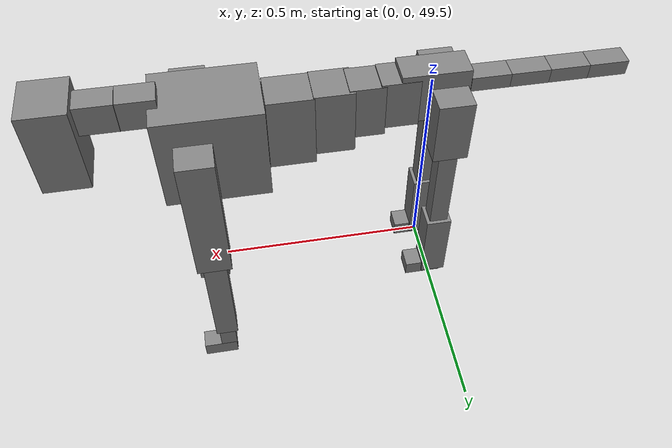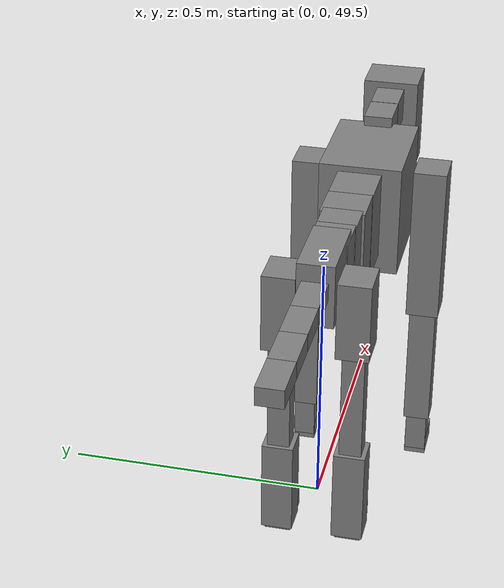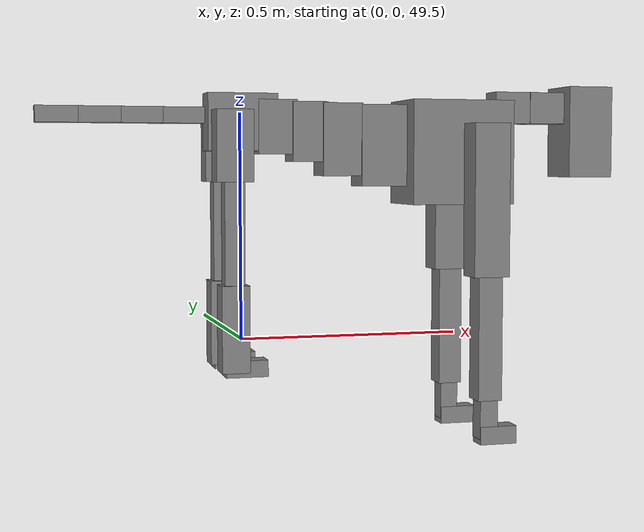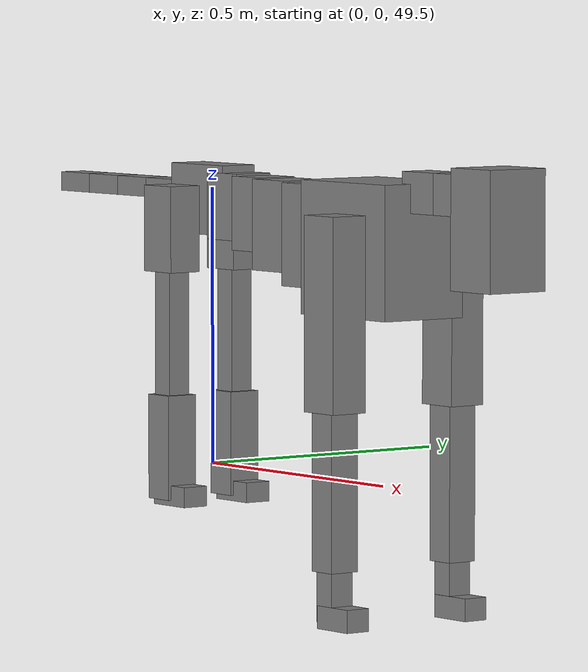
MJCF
<mujoco model="dog">

    <default>
        <joint armature="0.02" stiffness="1" damping="0.2" limited="true"/>
        <geom condim="3" friction="1 0.05 0.05" margin="0.01"/>
        <motor ctrllimited="true" ctrlrange="-1.0 1.0" forcelimited="true" gear="50"/>
    </default>

    <compiler inertiafromgeom="true" angle="radian"/>

    <option timestep="0.016" iterations="50" tolerance="1e-10" solver="Newton" jacobian="dense" cone="pyramidal"/>

    <size nconmax="20000" njmax="60000" nstack="5000000"/>
    <visual>
        <map force="0.1" zfar="30"/>
        <rgba haze="0.15 0.25 0.35 1"/>
        <quality shadowsize="2048"/>
        <global offwidth="800" offheight="800"/>
    </visual>

    <asset>
        <texture type="skybox" builtin="gradient" rgb1="0.3 0.5 0.7" rgb2="0 0 0" width="512" height="512"/>
        <texture name="texplane" type="2d" builtin="checker" rgb1=".2 .3 .4" rgb2=".1 0.15 0.2" width="512" height="512"
                 mark="cross" markrgb=".8 .8 .8"/>
        <texture name="texgeom" type="cube" builtin="flat" mark="cross" width="127" height="1278" rgb1="0.8 0.6 0.4"
                 rgb2="0.8 0.6 0.4" markrgb="1 1 1" random="0.01"/>

        <material name="matplane" reflectance="0.3" texture="texplane" texrepeat="1 1" texuniform="true"/>
        <material name="matgeom" texture="texgeom" texuniform="true" rgba="0.8 0.6 .4 1"/>
    </asset>

    <worldbody>
        <geom name="floor" pos="0 0 0" size="0 0 .25" type="plane" material="matplane" condim="3"/>

        <light directional="false" diffuse=".2 .2 .2" specular="0 0 0" pos="0 0 5" dir="0 0 -1" castshadow="false"/>
        <light mode="targetbodycom" target="torso" directional="false" diffuse=".8 .8 .8" specular="0.3 0.3 0.3"
               pos="0 0 4.0" dir="0 0 -1"/>

        <body name="root" pos="0 0 50">
            <freejoint name="root_1"/>
            <geom type="box" pos="0 0 -0.02" size="0.0774  0.0358  0.063" density="2030"/>

            <body name="spine1" pos="0.054 0 0">
                <joint name="spine1_y" axis="0 1 0" range="0 0.7" limited="true"/>
                <geom type="box" pos="0.02375 0 -0.03" size="0.04375  0.0375  0.05985" density="2030"/>

                <body name="spine2" pos="0.0612 0 0">
                    <joint name="spine2_y" axis="0 1 0" range="-0.15 0.15" limited="true"/>
                    <geom type="box" pos="0.03555  0  -0.04" size="0.04055  0.039  0.06615" density="2030"/>

                    <body name="spine3" pos="0.0730 0 0">
                        <joint name="spine3_y" axis="0 1 0" range="-0.15 0.15" limited="true"/>
                        <geom type="box" pos="0.03555  0  -0.057" size="0.04555  0.0445  0.081" density="2030"/>

                        <body name="spine4" pos="0.0780 0 0">
                            <joint name="spine4_y" axis="0 1 0" range="-0.15 0.15" limited="true"/>
                            <geom type="box" pos="0.05265  0  -0.07" size="0.05265  0.045  0.09135" density="2030"/>

                            <body name="torso" pos="0.1082 0 0">
                                <joint name="torso_y" axis="0 1 0" range="-0.15 0.15" limited="true"/>
                                <geom type="box" pos="0.11925  0  -0.085" size="0.11925  0.085  0.11745"
                                      density="2030"/>

                                <body name="neck1" pos="0.2160  0   0.0180">
                                    <joint name="neck1_y" axis="0 1 0" range="-1.2  -1" limited="true"/>
                                    <geom type="box" pos="0.0423  0  0" size="0.0423  0.03  0.036" density="2325"/>

                                    <body name="neck2" pos="0.0853  0  0">
                                        <joint name="neck2_y" axis="0 1 0" range="0.1  0" limited="true"/>
                                        <geom type="box" pos="0.0423  0  0" size="0.0423  0.03  0.036" density="2325"/>

                                        <body name="head" pos="0.0853  0  0">
                                            <joint name="head_y" axis="0 1 0" range="-0.3  -0.2" limited="true"/>
                                            <geom type="box" pos="0.0531  0  -0.055" size="0.0531  0.06  0.1044"
                                                  density="4030"/>

                                        </body>
                                    </body>
                                </body>

                                <body name="front_shoulder" pos="0.156  0   -0.0480">
                                    <joint name="front_shoulder_y" axis="0 1 0" range="-1 1.5" limited="true"/>
                                    <geom type="box" pos="0 0.13 -0.1434" size="0.0410  0.0350  0.1700" density="1158"/>
                                    <geom type="box" pos="0 -0.13 -0.1434" size="0.0410  0.0350  0.1700"
                                          density="1158"/>

                                    <body name="front_elbow" pos="0  0  -0.2867">
                                        <joint name="front_elbow_y" axis="0 1 0" range="-2 0" limited="true"/>
                                        <geom type="box" pos="0 0.13 -0.1512" size="0.0277  0.0283  0.1512"
                                              density="1081"/>
                                        <geom type="box" pos="0 -0.13 -0.1512" size="0.0277  0.0283  0.1512"
                                              density="1081"/>

                                        <body name="front_wrist" pos="0  0  -0.3023">
                                            <joint name="front_wrist_y" axis="0 1 0" range="-0.2 0" limited="true"/>
                                            <geom type="box" pos="0 0.13 -0.0372" size="0.0206  0.0229  0.0503"
                                                  density="1664"/>
                                            <geom type="box" pos="0 -0.13 -0.0372" size="0.0206  0.0229  0.0503"
                                                  density="1664"/>

                                            <body name="front_finger_end" pos="0  0  -0.0744">
                                                <joint name="front_finger_y" axis="0 1 0" range="-0.4 1"
                                                       limited="true"/>
                                                <geom type="box" pos="0.0232  0.13  -0.0051"
                                                      size="0.0425  0.0232  0.0201" density="1515"/>
                                                <geom type="box" pos="0.0232  -0.13  -0.0051"
                                                      size="0.0425  0.0232  0.0201" density="1515"/>

                                            </body>

                                        </body>
                                    </body>
                                </body>

                            </body>
                        </body>
                    </body>
                </body>
            </body>

            <body name="back_hip" pos="-0.03 0 -0.018">
                <joint name="back_hip_y" axis="0 1 0" range="-1.5 0.3" limited="true"/>
                <geom type="box" pos="0 0.07 -0.0549" size="0.0405  0.0318  0.0777" density="1154"/>
                <geom type="box" pos="0 -0.07 -0.0549" size="0.0405  0.0318  0.0777" density="1154"/>

                <body name="back_knee" pos="0  0  -0.1098">
                    <joint name="back_knee_y" axis="0 1 0" range="0 2.8" limited="true"/>
                    <geom type="box" pos="0 0.07 -0.1283" size="0.0219  0.0216  0.1439" density="1227"/>
                    <geom type="box" pos="0 -0.07 -0.1283" size="0.0219  0.0216  0.1439" density="1227"/>

                    <body name="back_ankle" pos="0  0  -0.2566">
                        <joint name="back_ankle_y" axis="0 1 0" range="-2.2 0" limited="true"/>
                        <geom type="box" pos="0 0.07 -0.0831" size="0.0305  0.0305  0.0944" density="1284"/>
                        <geom type="box" pos="0 -0.07 -0.0831" size="0.0305  0.0305  0.0944" density="1284"/>

                        <body name="back_toe_end" pos="0  0  -0.1662">
                            <joint name="back_toe_y" axis="0 1 0" range="-0.4 1" limited="true"/>
                            <geom type="box" pos="0.0251  0.07  -0.0032" size="0.0460  0.0251  0.0182" density="1515"/>
                            <geom type="box" pos="0.0251  -0.07  -0.0032" size="0.0460  0.0251  0.0182" density="1515"/>

                        </body>
                    </body>
                </body>
            </body>

            <body name="tail1" pos="-0.074 0 -0.006">
                <joint name="tail1_y" axis="0 1 0" range="-0.2 0.2" limited="true"/>
                <geom type="box" pos="-0.0536  0  0" size="0.045  0.025  0.0175" density="1587"/>

                <body name="tail2" pos="-0.09 0 0">
                    <joint name="tail2_y" axis="0 1 0" range="-0.2 0.2" limited="true"/>
                    <geom type="box" pos="-0.0536  0  0" size="0.045  0.025  0.0175" density="1587"/>

                    <body name="tail3" pos="-0.09 0 0">
                        <joint name="tail3_y" axis="0 1 0" range="-0.2 0.2" limited="true"/>
                        <geom type="box" pos="-0.0536  0  0" size="0.045  0.025  0.0175" density="1587"/>

                        <body name="tail4" pos="-0.09 0 0">
                            <joint name="tail4_y" axis="0 1 0" range="-0.2 0.2" limited="true"/>
                            <geom type="box" pos="-0.0536  0  0" size="0.045  0.025  0.0175" density="1587"/>

                        </body>
                    </body>
                </body>
            </body>
        </body>
    </worldbody>

    <actuator>
        <motor joint="spine1_y" forcerange="-150 150     "/>
        <motor joint="spine2_y" forcerange="-150 150     "/>
        <motor joint="spine3_y" forcerange="-150 150     "/>
        <motor joint="spine4_y" forcerange="-150 150     "/>
        <motor joint="torso_y" forcerange="-150 150     "/>
        <motor joint="neck1_y" forcerange="-100 100       "/>
        <motor joint="neck2_y" forcerange="-100 100       "/>
        <motor joint="head_y" forcerange="-150 150       "/>
        <motor joint="front_shoulder_y" forcerange="-191.39 142.15"/>
        <motor joint="front_elbow_y" forcerange="-133.80 171.99"/>
        <motor joint="front_wrist_y" forcerange="-97.25 85.81"/>
        <motor joint="front_finger_y" forcerange="-58.51 25.19"/>
        <motor joint="back_hip_y" forcerange="-245.99 377.51"/>
        <motor joint="back_knee_y" forcerange="-209.16 304.95"/>
        <motor joint="back_angle_y" forcerange="-168.89 218.82"/>
        <motor joint="back_toe_y" forcerange="-93.77 26.88"/>
        <motor joint="tail1_y" forcerange="-50 50     "/>
        <motor joint="tail2_y" forcerange="-50 50     "/>
        <motor joint="tail3_y" forcerange="-50 50     "/>
        <motor joint="tail4_y" forcerange="-50 50     "/>
    </actuator>
</mujoco>
